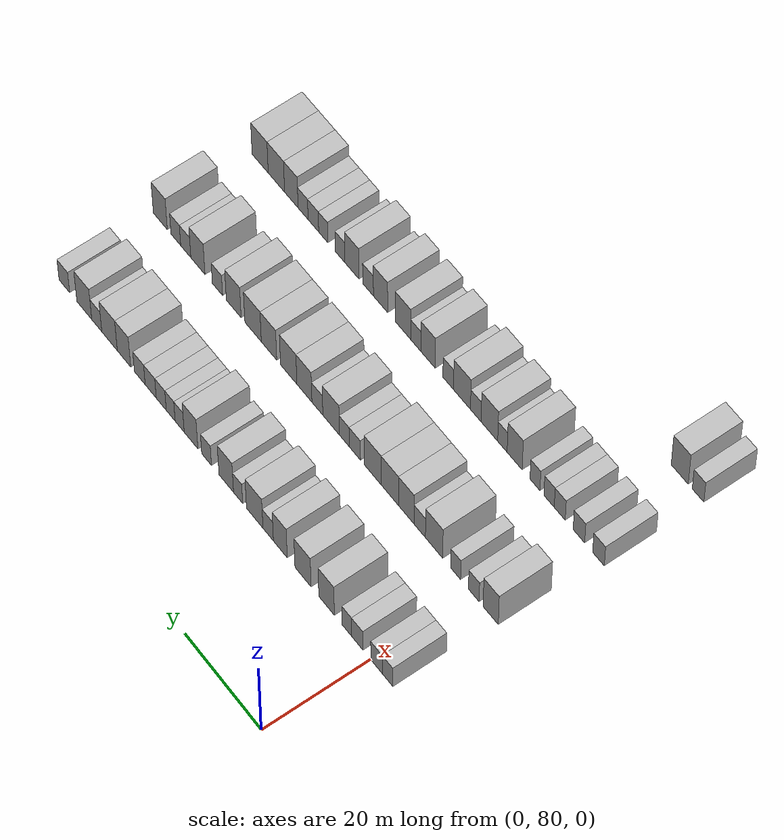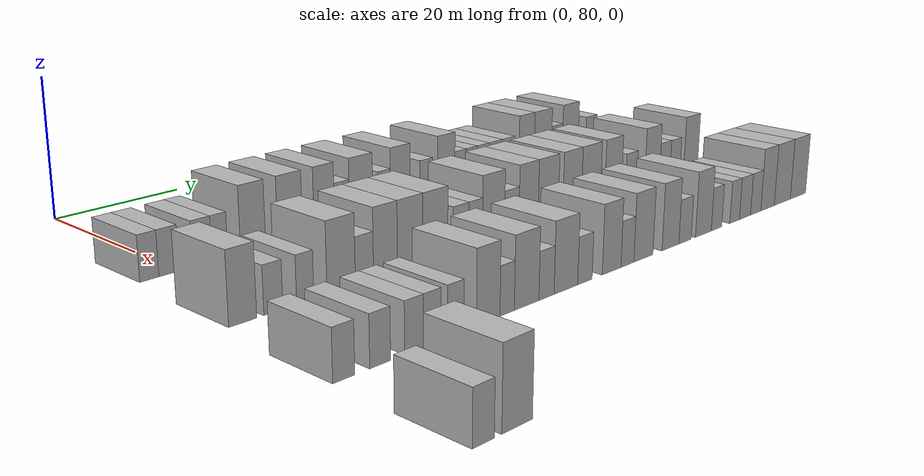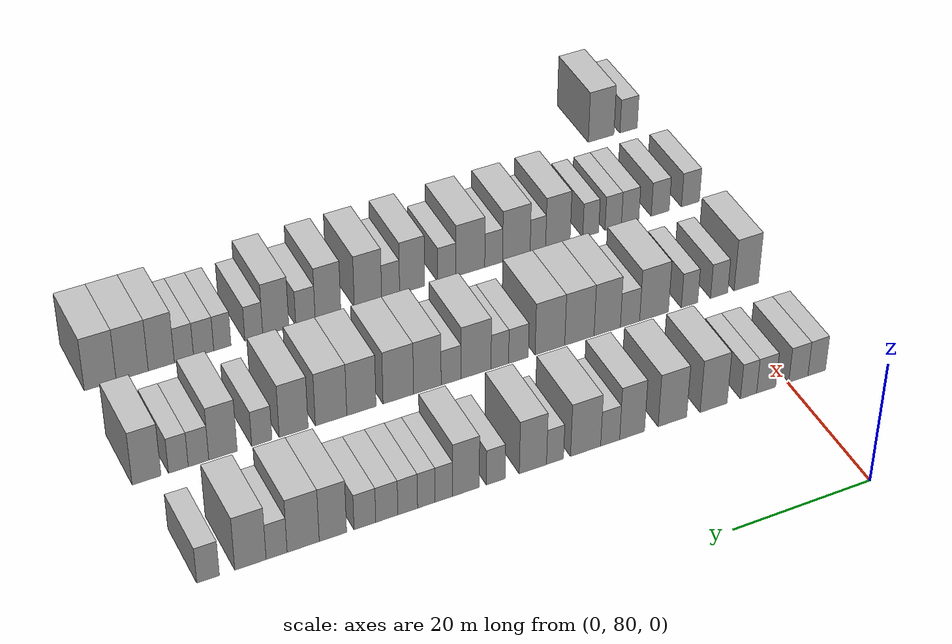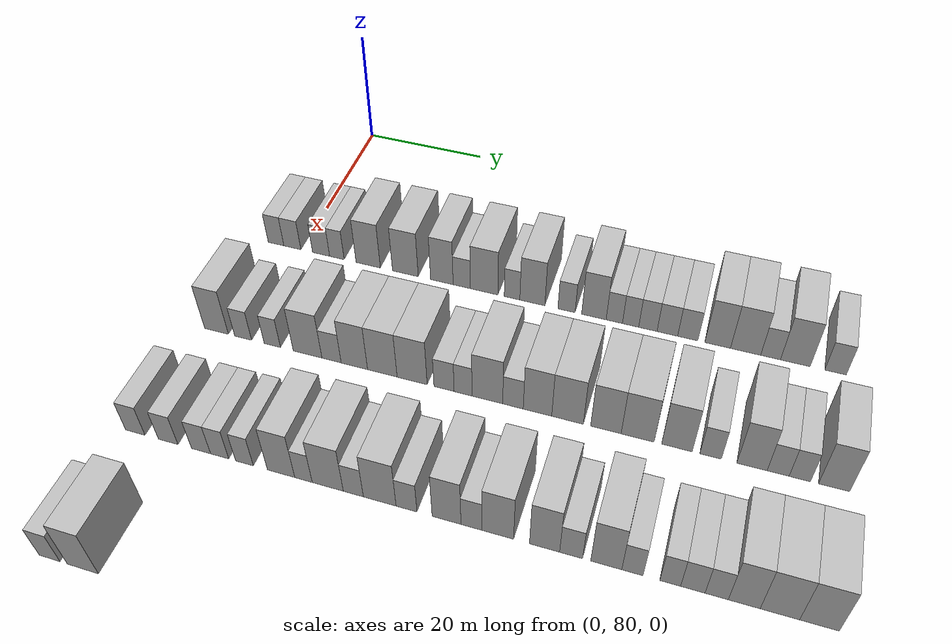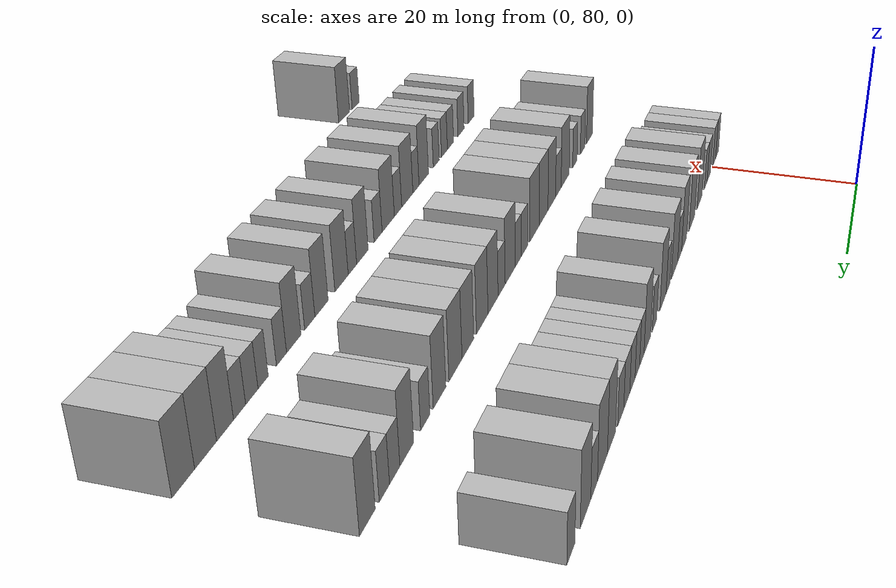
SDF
<sdf version="1.6">
 <world name="default">
  <model name="building_110">
   <static>1</static>
   <pose>25.0000 75.6495 0 0.000000 0.000000 0.000000</pose>
   <link name="link">
    <pose>0 0 3.00 0 0 0</pose>
    <collision name="collision"><geometry><box><size>10.0000 2.6964 6.0000</size></box></geometry></collision>
    <visual name="visual">
     <cast_shadows>0</cast_shadows>
     <geometry><box><size>10.0000 2.6964 6.0000</size></box></geometry>
     <material>
      <script>
       <uri>model://HANNAS_wall/materials/scripts</uri>
       <uri>model://HANNAS_wall/materials/textures</uri>
       <name>vrc/HANNAS_wall</name>
      </script>
     </material>
    </visual>
   </link>
  </model>
  <model name="building_111">
   <static>1</static>
   <pose>25.0000 78.4590 0 0.000000 0.000000 0.000000</pose>
   <link name="link">
    <pose>0 0 3.00 0 0 0</pose>
    <collision name="collision"><geometry><box><size>10.0000 2.9227 6.0000</size></box></geometry></collision>
    <visual name="visual">
     <cast_shadows>0</cast_shadows>
     <geometry><box><size>10.0000 2.9227 6.0000</size></box></geometry>
     <material>
      <script>
       <uri>model://HANNAS_wall/materials/scripts</uri>
       <uri>model://HANNAS_wall/materials/textures</uri>
       <name>vrc/HANNAS_wall</name>
      </script>
     </material>
    </visual>
   </link>
  </model>
  <model name="building_112">
   <static>1</static>
   <pose>25.0000 83.3650 0 0.000000 0.000000 0.000000</pose>
   <link name="link">
    <pose>0 0 3.00 0 0 0</pose>
    <collision name="collision"><geometry><box><size>10.0000 2.8891 6.0000</size></box></geometry></collision>
    <visual name="visual">
     <cast_shadows>0</cast_shadows>
     <geometry><box><size>10.0000 2.8891 6.0000</size></box></geometry>
     <material>
      <script>
       <uri>model://HANNAS_wall/materials/scripts</uri>
       <uri>model://HANNAS_wall/materials/textures</uri>
       <name>vrc/HANNAS_wall</name>
      </script>
     </material>
    </visual>
   </link>
  </model>
  <model name="building_113">
   <static>1</static>
   <pose>25.0000 86.0320 0 0.000000 0.000000 0.000000</pose>
   <link name="link">
    <pose>0 0 3.00 0 0 0</pose>
    <collision name="collision"><geometry><box><size>10.0000 2.4450 6.0000</size></box></geometry></collision>
    <visual name="visual">
     <cast_shadows>0</cast_shadows>
     <geometry><box><size>10.0000 2.4450 6.0000</size></box></geometry>
     <material>
      <script>
       <uri>model://HANNAS_wall/materials/scripts</uri>
       <uri>model://HANNAS_wall/materials/textures</uri>
       <name>vrc/HANNAS_wall</name>
      </script>
     </material>
    </visual>
   </link>
  </model>
  <model name="building_114">
   <static>1</static>
   <pose>25.0000 91.2689 0 0.000000 0.000000 0.000000</pose>
   <link name="link">
    <pose>0 0 4.50 0 0 0</pose>
    <collision name="collision"><geometry><box><size>10.0000 4.0287 9.0000</size></box></geometry></collision>
    <visual name="visual">
     <cast_shadows>0</cast_shadows>
     <geometry><box><size>10.0000 4.0287 9.0000</size></box></geometry>
     <material>
      <script>
       <uri>model://HANNAS_wall/materials/scripts</uri>
       <uri>model://HANNAS_wall/materials/textures</uri>
       <name>vrc/HANNAS_wall</name>
      </script>
     </material>
    </visual>
   </link>
  </model>
  <model name="building_115">
   <static>1</static>
   <pose>25.0000 97.3821 0 0.000000 0.000000 0.000000</pose>
   <link name="link">
    <pose>0 0 4.50 0 0 0</pose>
    <collision name="collision"><geometry><box><size>10.0000 4.1976 9.0000</size></box></geometry></collision>
    <visual name="visual">
     <cast_shadows>0</cast_shadows>
     <geometry><box><size>10.0000 4.1976 9.0000</size></box></geometry>
     <material>
      <script>
       <uri>model://HANNAS_wall/materials/scripts</uri>
       <uri>model://HANNAS_wall/materials/textures</uri>
       <name>vrc/HANNAS_wall</name>
      </script>
     </material>
    </visual>
   </link>
  </model>
  <model name="building_116">
   <static>1</static>
   <pose>25.0000 103.2933 0 0.000000 0.000000 0.000000</pose>
   <link name="link">
    <pose>0 0 4.50 0 0 0</pose>
    <collision name="collision"><geometry><box><size>10.0000 3.6248 9.0000</size></box></geometry></collision>
    <visual name="visual">
     <cast_shadows>0</cast_shadows>
     <geometry><box><size>10.0000 3.6248 9.0000</size></box></geometry>
     <material>
      <script>
       <uri>model://HANNAS_wall/materials/scripts</uri>
       <uri>model://HANNAS_wall/materials/textures</uri>
       <name>vrc/HANNAS_wall</name>
      </script>
     </material>
    </visual>
   </link>
  </model>
  <model name="building_117">
   <static>1</static>
   <pose>25.0000 106.4768 0 0.000000 0.000000 0.000000</pose>
   <link name="link">
    <pose>0 0 3.00 0 0 0</pose>
    <collision name="collision"><geometry><box><size>10.0000 2.7423 6.0000</size></box></geometry></collision>
    <visual name="visual">
     <cast_shadows>0</cast_shadows>
     <geometry><box><size>10.0000 2.7423 6.0000</size></box></geometry>
     <material>
      <script>
       <uri>model://HANNAS_wall/materials/scripts</uri>
       <uri>model://HANNAS_wall/materials/textures</uri>
       <name>vrc/HANNAS_wall</name>
      </script>
     </material>
    </visual>
   </link>
  </model>
  <model name="building_118">
   <static>1</static>
   <pose>25.0000 110.0171 0 0.000000 0.000000 0.000000</pose>
   <link name="link">
    <pose>0 0 4.50 0 0 0</pose>
    <collision name="collision"><geometry><box><size>10.0000 4.3384 9.0000</size></box></geometry></collision>
    <visual name="visual">
     <cast_shadows>0</cast_shadows>
     <geometry><box><size>10.0000 4.3384 9.0000</size></box></geometry>
     <material>
      <script>
       <uri>model://HANNAS_wall/materials/scripts</uri>
       <uri>model://HANNAS_wall/materials/textures</uri>
       <name>vrc/HANNAS_wall</name>
      </script>
     </material>
    </visual>
   </link>
  </model>
  <model name="building_119">
   <static>1</static>
   <pose>25.0000 114.3981 0 0.000000 0.000000 0.000000</pose>
   <link name="link">
    <pose>0 0 3.00 0 0 0</pose>
    <collision name="collision"><geometry><box><size>10.0000 2.4237 6.0000</size></box></geometry></collision>
    <visual name="visual">
     <cast_shadows>0</cast_shadows>
     <geometry><box><size>10.0000 2.4237 6.0000</size></box></geometry>
     <material>
      <script>
       <uri>model://HANNAS_wall/materials/scripts</uri>
       <uri>model://HANNAS_wall/materials/textures</uri>
       <name>vrc/HANNAS_wall</name>
      </script>
     </material>
    </visual>
   </link>
  </model>
  <model name="building_120">
   <static>1</static>
   <pose>25.0000 117.5397 0 0.000000 0.000000 0.000000</pose>
   <link name="link">
    <pose>0 0 4.50 0 0 0</pose>
    <collision name="collision"><geometry><box><size>10.0000 3.8594 9.0000</size></box></geometry></collision>
    <visual name="visual">
     <cast_shadows>0</cast_shadows>
     <geometry><box><size>10.0000 3.8594 9.0000</size></box></geometry>
     <material>
      <script>
       <uri>model://HANNAS_wall/materials/scripts</uri>
       <uri>model://HANNAS_wall/materials/textures</uri>
       <name>vrc/HANNAS_wall</name>
      </script>
     </material>
    </visual>
   </link>
  </model>
  <model name="building_121">
   <static>1</static>
   <pose>25.0000 122.7769 0 0.000000 0.000000 0.000000</pose>
   <link name="link">
    <pose>0 0 3.00 0 0 0</pose>
    <collision name="collision"><geometry><box><size>10.0000 2.6151 6.0000</size></box></geometry></collision>
    <visual name="visual">
     <cast_shadows>0</cast_shadows>
     <geometry><box><size>10.0000 2.6151 6.0000</size></box></geometry>
     <material>
      <script>
       <uri>model://HANNAS_wall/materials/scripts</uri>
       <uri>model://HANNAS_wall/materials/textures</uri>
       <name>vrc/HANNAS_wall</name>
      </script>
     </material>
    </visual>
   </link>
  </model>
  <model name="building_122">
   <static>1</static>
   <pose>25.0000 126.9235 0 0.000000 0.000000 0.000000</pose>
   <link name="link">
    <pose>0 0 4.50 0 0 0</pose>
    <collision name="collision"><geometry><box><size>10.0000 3.6781 9.0000</size></box></geometry></collision>
    <visual name="visual">
     <cast_shadows>0</cast_shadows>
     <geometry><box><size>10.0000 3.6781 9.0000</size></box></geometry>
     <material>
      <script>
       <uri>model://HANNAS_wall/materials/scripts</uri>
       <uri>model://HANNAS_wall/materials/textures</uri>
       <name>vrc/HANNAS_wall</name>
      </script>
     </material>
    </visual>
   </link>
  </model>
  <model name="building_123">
   <static>1</static>
   <pose>25.0000 129.9770 0 0.000000 0.000000 0.000000</pose>
   <link name="link">
    <pose>0 0 3.00 0 0 0</pose>
    <collision name="collision"><geometry><box><size>10.0000 2.4290 6.0000</size></box></geometry></collision>
    <visual name="visual">
     <cast_shadows>0</cast_shadows>
     <geometry><box><size>10.0000 2.4290 6.0000</size></box></geometry>
     <material>
      <script>
       <uri>model://HANNAS_wall/materials/scripts</uri>
       <uri>model://HANNAS_wall/materials/textures</uri>
       <name>vrc/HANNAS_wall</name>
      </script>
     </material>
    </visual>
   </link>
  </model>
  <model name="building_124">
   <static>1</static>
   <pose>25.0000 132.3944 0 0.000000 0.000000 0.000000</pose>
   <link name="link">
    <pose>0 0 3.00 0 0 0</pose>
    <collision name="collision"><geometry><box><size>10.0000 2.4057 6.0000</size></box></geometry></collision>
    <visual name="visual">
     <cast_shadows>0</cast_shadows>
     <geometry><box><size>10.0000 2.4057 6.0000</size></box></geometry>
     <material>
      <script>
       <uri>model://HANNAS_wall/materials/scripts</uri>
       <uri>model://HANNAS_wall/materials/textures</uri>
       <name>vrc/HANNAS_wall</name>
      </script>
     </material>
    </visual>
   </link>
  </model>
  <model name="building_125">
   <static>1</static>
   <pose>25.0000 134.9478 0 0.000000 0.000000 0.000000</pose>
   <link name="link">
    <pose>0 0 3.00 0 0 0</pose>
    <collision name="collision"><geometry><box><size>10.0000 2.7012 6.0000</size></box></geometry></collision>
    <visual name="visual">
     <cast_shadows>0</cast_shadows>
     <geometry><box><size>10.0000 2.7012 6.0000</size></box></geometry>
     <material>
      <script>
       <uri>model://HANNAS_wall/materials/scripts</uri>
       <uri>model://HANNAS_wall/materials/textures</uri>
       <name>vrc/HANNAS_wall</name>
      </script>
     </material>
    </visual>
   </link>
  </model>
  <model name="building_126">
   <static>1</static>
   <pose>25.0000 137.7971 0 0.000000 0.000000 0.000000</pose>
   <link name="link">
    <pose>0 0 3.00 0 0 0</pose>
    <collision name="collision"><geometry><box><size>10.0000 2.9974 6.0000</size></box></geometry></collision>
    <visual name="visual">
     <cast_shadows>0</cast_shadows>
     <geometry><box><size>10.0000 2.9974 6.0000</size></box></geometry>
     <material>
      <script>
       <uri>model://HANNAS_wall/materials/scripts</uri>
       <uri>model://HANNAS_wall/materials/textures</uri>
       <name>vrc/HANNAS_wall</name>
      </script>
     </material>
    </visual>
   </link>
  </model>
  <model name="building_127">
   <static>1</static>
   <pose>25.0000 140.7614 0 0.000000 0.000000 0.000000</pose>
   <link name="link">
    <pose>0 0 3.00 0 0 0</pose>
    <collision name="collision"><geometry><box><size>10.0000 2.9312 6.0000</size></box></geometry></collision>
    <visual name="visual">
     <cast_shadows>0</cast_shadows>
     <geometry><box><size>10.0000 2.9312 6.0000</size></box></geometry>
     <material>
      <script>
       <uri>model://HANNAS_wall/materials/scripts</uri>
       <uri>model://HANNAS_wall/materials/textures</uri>
       <name>vrc/HANNAS_wall</name>
      </script>
     </material>
    </visual>
   </link>
  </model>
  <model name="building_128">
   <static>1</static>
   <pose>25.0000 145.0583 0 0.000000 0.000000 0.000000</pose>
   <link name="link">
    <pose>0 0 4.50 0 0 0</pose>
    <collision name="collision"><geometry><box><size>10.0000 3.6625 9.0000</size></box></geometry></collision>
    <visual name="visual">
     <cast_shadows>0</cast_shadows>
     <geometry><box><size>10.0000 3.6625 9.0000</size></box></geometry>
     <material>
      <script>
       <uri>model://HANNAS_wall/materials/scripts</uri>
       <uri>model://HANNAS_wall/materials/textures</uri>
       <name>vrc/HANNAS_wall</name>
      </script>
     </material>
    </visual>
   </link>
  </model>
  <model name="building_129">
   <static>1</static>
   <pose>25.0000 149.0203 0 0.000000 0.000000 0.000000</pose>
   <link name="link">
    <pose>0 0 4.50 0 0 0</pose>
    <collision name="collision"><geometry><box><size>10.0000 4.2614 9.0000</size></box></geometry></collision>
    <visual name="visual">
     <cast_shadows>0</cast_shadows>
     <geometry><box><size>10.0000 4.2614 9.0000</size></box></geometry>
     <material>
      <script>
       <uri>model://HANNAS_wall/materials/scripts</uri>
       <uri>model://HANNAS_wall/materials/textures</uri>
       <name>vrc/HANNAS_wall</name>
      </script>
     </material>
    </visual>
   </link>
  </model>
  <model name="building_130">
   <static>1</static>
   <pose>25.0000 152.5335 0 0.000000 0.000000 0.000000</pose>
   <link name="link">
    <pose>0 0 3.00 0 0 0</pose>
    <collision name="collision"><geometry><box><size>10.0000 2.7650 6.0000</size></box></geometry></collision>
    <visual name="visual">
     <cast_shadows>0</cast_shadows>
     <geometry><box><size>10.0000 2.7650 6.0000</size></box></geometry>
     <material>
      <script>
       <uri>model://HANNAS_wall/materials/scripts</uri>
       <uri>model://HANNAS_wall/materials/textures</uri>
       <name>vrc/HANNAS_wall</name>
      </script>
     </material>
    </visual>
   </link>
  </model>
  <model name="building_131">
   <static>1</static>
   <pose>25.0000 155.9703 0 0.000000 0.000000 0.000000</pose>
   <link name="link">
    <pose>0 0 4.50 0 0 0</pose>
    <collision name="collision"><geometry><box><size>10.0000 4.1086 9.0000</size></box></geometry></collision>
    <visual name="visual">
     <cast_shadows>0</cast_shadows>
     <geometry><box><size>10.0000 4.1086 9.0000</size></box></geometry>
     <material>
      <script>
       <uri>model://HANNAS_wall/materials/scripts</uri>
       <uri>model://HANNAS_wall/materials/textures</uri>
       <name>vrc/HANNAS_wall</name>
      </script>
     </material>
    </visual>
   </link>
  </model>
  <model name="building_132">
   <static>1</static>
   <pose>25.0000 161.4896 0 0.000000 0.000000 0.000000</pose>
   <link name="link">
    <pose>0 0 3.00 0 0 0</pose>
    <collision name="collision"><geometry><box><size>10.0000 2.9298 6.0000</size></box></geometry></collision>
    <visual name="visual">
     <cast_shadows>0</cast_shadows>
     <geometry><box><size>10.0000 2.9298 6.0000</size></box></geometry>
     <material>
      <script>
       <uri>model://HANNAS_wall/materials/scripts</uri>
       <uri>model://HANNAS_wall/materials/textures</uri>
       <name>vrc/HANNAS_wall</name>
      </script>
     </material>
    </visual>
   </link>
  </model>
  <model name="building_278">
   <static>1</static>
   <pose>44.0000 75.2810 0 0.000000 0.000000 0.000000</pose>
   <link name="link">
    <pose>0 0 4.50 0 0 0</pose>
    <collision name="collision"><geometry><box><size>10.0000 3.8333 9.0000</size></box></geometry></collision>
    <visual name="visual">
     <cast_shadows>0</cast_shadows>
     <geometry><box><size>10.0000 3.8333 9.0000</size></box></geometry>
     <material>
      <script>
       <uri>model://HANNAS_wall/materials/scripts</uri>
       <uri>model://HANNAS_wall/materials/textures</uri>
       <name>vrc/HANNAS_wall</name>
      </script>
     </material>
    </visual>
   </link>
  </model>
  <model name="building_279">
   <static>1</static>
   <pose>44.0000 79.5506 0 0.000000 0.000000 0.000000</pose>
   <link name="link">
    <pose>0 0 3.00 0 0 0</pose>
    <collision name="collision"><geometry><box><size>10.0000 2.7057 6.0000</size></box></geometry></collision>
    <visual name="visual">
     <cast_shadows>0</cast_shadows>
     <geometry><box><size>10.0000 2.7057 6.0000</size></box></geometry>
     <material>
      <script>
       <uri>model://HANNAS_wall/materials/scripts</uri>
       <uri>model://HANNAS_wall/materials/textures</uri>
       <name>vrc/HANNAS_wall</name>
      </script>
     </material>
    </visual>
   </link>
  </model>
  <model name="building_280">
   <static>1</static>
   <pose>44.0000 84.1802 0 0.000000 0.000000 0.000000</pose>
   <link name="link">
    <pose>0 0 3.00 0 0 0</pose>
    <collision name="collision"><geometry><box><size>10.0000 2.5535 6.0000</size></box></geometry></collision>
    <visual name="visual">
     <cast_shadows>0</cast_shadows>
     <geometry><box><size>10.0000 2.5535 6.0000</size></box></geometry>
     <material>
      <script>
       <uri>model://HANNAS_wall/materials/scripts</uri>
       <uri>model://HANNAS_wall/materials/textures</uri>
       <name>vrc/HANNAS_wall</name>
      </script>
     </material>
    </visual>
   </link>
  </model>
  <model name="building_281">
   <static>1</static>
   <pose>44.0000 89.6745 0 0.000000 0.000000 0.000000</pose>
   <link name="link">
    <pose>0 0 4.50 0 0 0</pose>
    <collision name="collision"><geometry><box><size>10.0000 4.4352 9.0000</size></box></geometry></collision>
    <visual name="visual">
     <cast_shadows>0</cast_shadows>
     <geometry><box><size>10.0000 4.4352 9.0000</size></box></geometry>
     <material>
      <script>
       <uri>model://HANNAS_wall/materials/scripts</uri>
       <uri>model://HANNAS_wall/materials/textures</uri>
       <name>vrc/HANNAS_wall</name>
      </script>
     </material>
    </visual>
   </link>
  </model>
  <model name="building_282">
   <static>1</static>
   <pose>44.0000 93.3653 0 0.000000 0.000000 0.000000</pose>
   <link name="link">
    <pose>0 0 3.00 0 0 0</pose>
    <collision name="collision"><geometry><box><size>10.0000 2.9464 6.0000</size></box></geometry></collision>
    <visual name="visual">
     <cast_shadows>0</cast_shadows>
     <geometry><box><size>10.0000 2.9464 6.0000</size></box></geometry>
     <material>
      <script>
       <uri>model://HANNAS_wall/materials/scripts</uri>
       <uri>model://HANNAS_wall/materials/textures</uri>
       <name>vrc/HANNAS_wall</name>
      </script>
     </material>
    </visual>
   </link>
  </model>
  <model name="building_283">
   <static>1</static>
   <pose>44.0000 96.8377 0 0.000000 0.000000 0.000000</pose>
   <link name="link">
    <pose>0 0 4.50 0 0 0</pose>
    <collision name="collision"><geometry><box><size>10.0000 3.9984 9.0000</size></box></geometry></collision>
    <visual name="visual">
     <cast_shadows>0</cast_shadows>
     <geometry><box><size>10.0000 3.9984 9.0000</size></box></geometry>
     <material>
      <script>
       <uri>model://HANNAS_wall/materials/scripts</uri>
       <uri>model://HANNAS_wall/materials/textures</uri>
       <name>vrc/HANNAS_wall</name>
      </script>
     </material>
    </visual>
   </link>
  </model>
  <model name="building_284">
   <static>1</static>
   <pose>44.0000 101.0473 0 0.000000 0.000000 0.000000</pose>
   <link name="link">
    <pose>0 0 4.50 0 0 0</pose>
    <collision name="collision"><geometry><box><size>10.0000 4.4208 9.0000</size></box></geometry></collision>
    <visual name="visual">
     <cast_shadows>0</cast_shadows>
     <geometry><box><size>10.0000 4.4208 9.0000</size></box></geometry>
     <material>
      <script>
       <uri>model://HANNAS_wall/materials/scripts</uri>
       <uri>model://HANNAS_wall/materials/textures</uri>
       <name>vrc/HANNAS_wall</name>
      </script>
     </material>
    </visual>
   </link>
  </model>
  <model name="building_285">
   <static>1</static>
   <pose>44.0000 105.4753 0 0.000000 0.000000 0.000000</pose>
   <link name="link">
    <pose>0 0 4.50 0 0 0</pose>
    <collision name="collision"><geometry><box><size>10.0000 4.4351 9.0000</size></box></geometry></collision>
    <visual name="visual">
     <cast_shadows>0</cast_shadows>
     <geometry><box><size>10.0000 4.4351 9.0000</size></box></geometry>
     <material>
      <script>
       <uri>model://HANNAS_wall/materials/scripts</uri>
       <uri>model://HANNAS_wall/materials/textures</uri>
       <name>vrc/HANNAS_wall</name>
      </script>
     </material>
    </visual>
   </link>
  </model>
  <model name="building_286">
   <static>1</static>
   <pose>44.0000 110.1576 0 0.000000 0.000000 0.000000</pose>
   <link name="link">
    <pose>0 0 3.00 0 0 0</pose>
    <collision name="collision"><geometry><box><size>10.0000 2.9295 6.0000</size></box></geometry></collision>
    <visual name="visual">
     <cast_shadows>0</cast_shadows>
     <geometry><box><size>10.0000 2.9295 6.0000</size></box></geometry>
     <material>
      <script>
       <uri>model://HANNAS_wall/materials/scripts</uri>
       <uri>model://HANNAS_wall/materials/textures</uri>
       <name>vrc/HANNAS_wall</name>
      </script>
     </material>
    </visual>
   </link>
  </model>
  <model name="building_287">
   <static>1</static>
   <pose>44.0000 112.9179 0 0.000000 0.000000 0.000000</pose>
   <link name="link">
    <pose>0 0 3.00 0 0 0</pose>
    <collision name="collision"><geometry><box><size>10.0000 2.5911 6.0000</size></box></geometry></collision>
    <visual name="visual">
     <cast_shadows>0</cast_shadows>
     <geometry><box><size>10.0000 2.5911 6.0000</size></box></geometry>
     <material>
      <script>
       <uri>model://HANNAS_wall/materials/scripts</uri>
       <uri>model://HANNAS_wall/materials/textures</uri>
       <name>vrc/HANNAS_wall</name>
      </script>
     </material>
    </visual>
   </link>
  </model>
  <model name="building_288">
   <static>1</static>
   <pose>44.0000 116.4005 0 0.000000 0.000000 0.000000</pose>
   <link name="link">
    <pose>0 0 4.50 0 0 0</pose>
    <collision name="collision"><geometry><box><size>10.0000 4.3740 9.0000</size></box></geometry></collision>
    <visual name="visual">
     <cast_shadows>0</cast_shadows>
     <geometry><box><size>10.0000 4.3740 9.0000</size></box></geometry>
     <material>
      <script>
       <uri>model://HANNAS_wall/materials/scripts</uri>
       <uri>model://HANNAS_wall/materials/textures</uri>
       <name>vrc/HANNAS_wall</name>
      </script>
     </material>
    </visual>
   </link>
  </model>
  <model name="building_289">
   <static>1</static>
   <pose>44.0000 120.0363 0 0.000000 0.000000 0.000000</pose>
   <link name="link">
    <pose>0 0 3.00 0 0 0</pose>
    <collision name="collision"><geometry><box><size>10.0000 2.8978 6.0000</size></box></geometry></collision>
    <visual name="visual">
     <cast_shadows>0</cast_shadows>
     <geometry><box><size>10.0000 2.8978 6.0000</size></box></geometry>
     <material>
      <script>
       <uri>model://HANNAS_wall/materials/scripts</uri>
       <uri>model://HANNAS_wall/materials/textures</uri>
       <name>vrc/HANNAS_wall</name>
      </script>
     </material>
    </visual>
   </link>
  </model>
  <model name="building_290">
   <static>1</static>
   <pose>44.0000 123.4776 0 0.000000 0.000000 0.000000</pose>
   <link name="link">
    <pose>0 0 4.50 0 0 0</pose>
    <collision name="collision"><geometry><box><size>10.0000 3.9847 9.0000</size></box></geometry></collision>
    <visual name="visual">
     <cast_shadows>0</cast_shadows>
     <geometry><box><size>10.0000 3.9847 9.0000</size></box></geometry>
     <material>
      <script>
       <uri>model://HANNAS_wall/materials/scripts</uri>
       <uri>model://HANNAS_wall/materials/textures</uri>
       <name>vrc/HANNAS_wall</name>
      </script>
     </material>
    </visual>
   </link>
  </model>
  <model name="building_291">
   <static>1</static>
   <pose>44.0000 127.6505 0 0.000000 0.000000 0.000000</pose>
   <link name="link">
    <pose>0 0 4.50 0 0 0</pose>
    <collision name="collision"><geometry><box><size>10.0000 4.3612 9.0000</size></box></geometry></collision>
    <visual name="visual">
     <cast_shadows>0</cast_shadows>
     <geometry><box><size>10.0000 4.3612 9.0000</size></box></geometry>
     <material>
      <script>
       <uri>model://HANNAS_wall/materials/scripts</uri>
       <uri>model://HANNAS_wall/materials/textures</uri>
       <name>vrc/HANNAS_wall</name>
      </script>
     </material>
    </visual>
   </link>
  </model>
  <model name="building_292">
   <static>1</static>
   <pose>44.0000 132.9008 0 0.000000 0.000000 0.000000</pose>
   <link name="link">
    <pose>0 0 4.50 0 0 0</pose>
    <collision name="collision"><geometry><box><size>10.0000 4.1393 9.0000</size></box></geometry></collision>
    <visual name="visual">
     <cast_shadows>0</cast_shadows>
     <geometry><box><size>10.0000 4.1393 9.0000</size></box></geometry>
     <material>
      <script>
       <uri>model://HANNAS_wall/materials/scripts</uri>
       <uri>model://HANNAS_wall/materials/textures</uri>
       <name>vrc/HANNAS_wall</name>
      </script>
     </material>
    </visual>
   </link>
  </model>
  <model name="building_293">
   <static>1</static>
   <pose>44.0000 137.1803 0 0.000000 0.000000 0.000000</pose>
   <link name="link">
    <pose>0 0 4.50 0 0 0</pose>
    <collision name="collision"><geometry><box><size>10.0000 4.4198 9.0000</size></box></geometry></collision>
    <visual name="visual">
     <cast_shadows>0</cast_shadows>
     <geometry><box><size>10.0000 4.4198 9.0000</size></box></geometry>
     <material>
      <script>
       <uri>model://HANNAS_wall/materials/scripts</uri>
       <uri>model://HANNAS_wall/materials/textures</uri>
       <name>vrc/HANNAS_wall</name>
      </script>
     </material>
    </visual>
   </link>
  </model>
  <model name="building_294">
   <static>1</static>
   <pose>44.0000 142.4025 0 0.000000 0.000000 0.000000</pose>
   <link name="link">
    <pose>0 0 4.50 0 0 0</pose>
    <collision name="collision"><geometry><box><size>10.0000 4.0246 9.0000</size></box></geometry></collision>
    <visual name="visual">
     <cast_shadows>0</cast_shadows>
     <geometry><box><size>10.0000 4.0246 9.0000</size></box></geometry>
     <material>
      <script>
       <uri>model://HANNAS_wall/materials/scripts</uri>
       <uri>model://HANNAS_wall/materials/textures</uri>
       <name>vrc/HANNAS_wall</name>
      </script>
     </material>
    </visual>
   </link>
  </model>
  <model name="building_295">
   <static>1</static>
   <pose>44.0000 146.8113 0 0.000000 0.000000 0.000000</pose>
   <link name="link">
    <pose>0 0 3.00 0 0 0</pose>
    <collision name="collision"><geometry><box><size>10.0000 2.7929 6.0000</size></box></geometry></collision>
    <visual name="visual">
     <cast_shadows>0</cast_shadows>
     <geometry><box><size>10.0000 2.7929 6.0000</size></box></geometry>
     <material>
      <script>
       <uri>model://HANNAS_wall/materials/scripts</uri>
       <uri>model://HANNAS_wall/materials/textures</uri>
       <name>vrc/HANNAS_wall</name>
      </script>
     </material>
    </visual>
   </link>
  </model>
  <model name="building_296">
   <static>1</static>
   <pose>44.0000 152.1411 0 0.000000 0.000000 0.000000</pose>
   <link name="link">
    <pose>0 0 4.50 0 0 0</pose>
    <collision name="collision"><geometry><box><size>10.0000 3.8667 9.0000</size></box></geometry></collision>
    <visual name="visual">
     <cast_shadows>0</cast_shadows>
     <geometry><box><size>10.0000 3.8667 9.0000</size></box></geometry>
     <material>
      <script>
       <uri>model://HANNAS_wall/materials/scripts</uri>
       <uri>model://HANNAS_wall/materials/textures</uri>
       <name>vrc/HANNAS_wall</name>
      </script>
     </material>
    </visual>
   </link>
  </model>
  <model name="building_297">
   <static>1</static>
   <pose>44.0000 155.4641 0 0.000000 0.000000 0.000000</pose>
   <link name="link">
    <pose>0 0 3.00 0 0 0</pose>
    <collision name="collision"><geometry><box><size>10.0000 2.7793 6.0000</size></box></geometry></collision>
    <visual name="visual">
     <cast_shadows>0</cast_shadows>
     <geometry><box><size>10.0000 2.7793 6.0000</size></box></geometry>
     <material>
      <script>
       <uri>model://HANNAS_wall/materials/scripts</uri>
       <uri>model://HANNAS_wall/materials/textures</uri>
       <name>vrc/HANNAS_wall</name>
      </script>
     </material>
    </visual>
   </link>
  </model>
  <model name="building_298">
   <static>1</static>
   <pose>44.0000 158.1917 0 0.000000 0.000000 0.000000</pose>
   <link name="link">
    <pose>0 0 3.00 0 0 0</pose>
    <collision name="collision"><geometry><box><size>10.0000 2.6759 6.0000</size></box></geometry></collision>
    <visual name="visual">
     <cast_shadows>0</cast_shadows>
     <geometry><box><size>10.0000 2.6759 6.0000</size></box></geometry>
     <material>
      <script>
       <uri>model://HANNAS_wall/materials/scripts</uri>
       <uri>model://HANNAS_wall/materials/textures</uri>
       <name>vrc/HANNAS_wall</name>
      </script>
     </material>
    </visual>
   </link>
  </model>
  <model name="building_299">
   <static>1</static>
   <pose>44.0000 162.4577 0 0.000000 0.000000 0.000000</pose>
   <link name="link">
    <pose>0 0 4.50 0 0 0</pose>
    <collision name="collision"><geometry><box><size>10.0000 3.8561 9.0000</size></box></geometry></collision>
    <visual name="visual">
     <cast_shadows>0</cast_shadows>
     <geometry><box><size>10.0000 3.8561 9.0000</size></box></geometry>
     <material>
      <script>
       <uri>model://HANNAS_wall/materials/scripts</uri>
       <uri>model://HANNAS_wall/materials/textures</uri>
       <name>vrc/HANNAS_wall</name>
      </script>
     </material>
    </visual>
   </link>
  </model>
  <model name="building_456">
   <static>1</static>
   <pose>63.0000 73.3657 0 0.000000 0.000000 0.000000</pose>
   <link name="link">
    <pose>0 0 3.00 0 0 0</pose>
    <collision name="collision"><geometry><box><size>10.0000 2.9183 6.0000</size></box></geometry></collision>
    <visual name="visual">
     <cast_shadows>0</cast_shadows>
     <geometry><box><size>10.0000 2.9183 6.0000</size></box></geometry>
     <material>
      <script>
       <uri>model://HANNAS_wall/materials/scripts</uri>
       <uri>model://HANNAS_wall/materials/textures</uri>
       <name>vrc/HANNAS_wall</name>
      </script>
     </material>
    </visual>
   </link>
  </model>
  <model name="building_457">
   <static>1</static>
   <pose>63.0000 78.2753 0 0.000000 0.000000 0.000000</pose>
   <link name="link">
    <pose>0 0 3.00 0 0 0</pose>
    <collision name="collision"><geometry><box><size>10.0000 2.9010 6.0000</size></box></geometry></collision>
    <visual name="visual">
     <cast_shadows>0</cast_shadows>
     <geometry><box><size>10.0000 2.9010 6.0000</size></box></geometry>
     <material>
      <script>
       <uri>model://HANNAS_wall/materials/scripts</uri>
       <uri>model://HANNAS_wall/materials/textures</uri>
       <name>vrc/HANNAS_wall</name>
      </script>
     </material>
    </visual>
   </link>
  </model>
  <model name="building_458">
   <static>1</static>
   <pose>63.0000 83.1173 0 0.000000 0.000000 0.000000</pose>
   <link name="link">
    <pose>0 0 3.00 0 0 0</pose>
    <collision name="collision"><geometry><box><size>10.0000 2.7830 6.0000</size></box></geometry></collision>
    <visual name="visual">
     <cast_shadows>0</cast_shadows>
     <geometry><box><size>10.0000 2.7830 6.0000</size></box></geometry>
     <material>
      <script>
       <uri>model://HANNAS_wall/materials/scripts</uri>
       <uri>model://HANNAS_wall/materials/textures</uri>
       <name>vrc/HANNAS_wall</name>
      </script>
     </material>
    </visual>
   </link>
  </model>
  <model name="building_459">
   <static>1</static>
   <pose>63.0000 85.8189 0 0.000000 0.000000 0.000000</pose>
   <link name="link">
    <pose>0 0 3.00 0 0 0</pose>
    <collision name="collision"><geometry><box><size>10.0000 2.6202 6.0000</size></box></geometry></collision>
    <visual name="visual">
     <cast_shadows>0</cast_shadows>
     <geometry><box><size>10.0000 2.6202 6.0000</size></box></geometry>
     <material>
      <script>
       <uri>model://HANNAS_wall/materials/scripts</uri>
       <uri>model://HANNAS_wall/materials/textures</uri>
       <name>vrc/HANNAS_wall</name>
      </script>
     </material>
    </visual>
   </link>
  </model>
  <model name="building_460">
   <static>1</static>
   <pose>63.0000 89.3939 0 0.000000 0.000000 0.000000</pose>
   <link name="link">
    <pose>0 0 3.00 0 0 0</pose>
    <collision name="collision"><geometry><box><size>10.0000 2.5298 6.0000</size></box></geometry></collision>
    <visual name="visual">
     <cast_shadows>0</cast_shadows>
     <geometry><box><size>10.0000 2.5298 6.0000</size></box></geometry>
     <material>
      <script>
       <uri>model://HANNAS_wall/materials/scripts</uri>
       <uri>model://HANNAS_wall/materials/textures</uri>
       <name>vrc/HANNAS_wall</name>
      </script>
     </material>
    </visual>
   </link>
  </model>
  <model name="building_461">
   <static>1</static>
   <pose>63.0000 94.5844 0 0.000000 0.000000 0.000000</pose>
   <link name="link">
    <pose>0 0 4.50 0 0 0</pose>
    <collision name="collision"><geometry><box><size>10.0000 3.8511 9.0000</size></box></geometry></collision>
    <visual name="visual">
     <cast_shadows>0</cast_shadows>
     <geometry><box><size>10.0000 3.8511 9.0000</size></box></geometry>
     <material>
      <script>
       <uri>model://HANNAS_wall/materials/scripts</uri>
       <uri>model://HANNAS_wall/materials/textures</uri>
       <name>vrc/HANNAS_wall</name>
      </script>
     </material>
    </visual>
   </link>
  </model>
  <model name="building_462">
   <static>1</static>
   <pose>63.0000 97.7195 0 0.000000 0.000000 0.000000</pose>
   <link name="link">
    <pose>0 0 3.00 0 0 0</pose>
    <collision name="collision"><geometry><box><size>10.0000 2.4191 6.0000</size></box></geometry></collision>
    <visual name="visual">
     <cast_shadows>0</cast_shadows>
     <geometry><box><size>10.0000 2.4191 6.0000</size></box></geometry>
     <material>
      <script>
       <uri>model://HANNAS_wall/materials/scripts</uri>
       <uri>model://HANNAS_wall/materials/textures</uri>
       <name>vrc/HANNAS_wall</name>
      </script>
     </material>
    </visual>
   </link>
  </model>
  <model name="building_463">
   <static>1</static>
   <pose>63.0000 101.0705 0 0.000000 0.000000 0.000000</pose>
   <link name="link">
    <pose>0 0 4.50 0 0 0</pose>
    <collision name="collision"><geometry><box><size>10.0000 4.2828 9.0000</size></box></geometry></collision>
    <visual name="visual">
     <cast_shadows>0</cast_shadows>
     <geometry><box><size>10.0000 4.2828 9.0000</size></box></geometry>
     <material>
      <script>
       <uri>model://HANNAS_wall/materials/scripts</uri>
       <uri>model://HANNAS_wall/materials/textures</uri>
       <name>vrc/HANNAS_wall</name>
      </script>
     </material>
    </visual>
   </link>
  </model>
  <model name="building_464">
   <static>1</static>
   <pose>63.0000 104.5792 0 0.000000 0.000000 0.000000</pose>
   <link name="link">
    <pose>0 0 3.00 0 0 0</pose>
    <collision name="collision"><geometry><box><size>10.0000 2.7346 6.0000</size></box></geometry></collision>
    <visual name="visual">
     <cast_shadows>0</cast_shadows>
     <geometry><box><size>10.0000 2.7346 6.0000</size></box></geometry>
     <material>
      <script>
       <uri>model://HANNAS_wall/materials/scripts</uri>
       <uri>model://HANNAS_wall/materials/textures</uri>
       <name>vrc/HANNAS_wall</name>
      </script>
     </material>
    </visual>
   </link>
  </model>
  <model name="building_465">
   <static>1</static>
   <pose>63.0000 108.1446 0 0.000000 0.000000 0.000000</pose>
   <link name="link">
    <pose>0 0 4.50 0 0 0</pose>
    <collision name="collision"><geometry><box><size>10.0000 4.3963 9.0000</size></box></geometry></collision>
    <visual name="visual">
     <cast_shadows>0</cast_shadows>
     <geometry><box><size>10.0000 4.3963 9.0000</size></box></geometry>
     <material>
      <script>
       <uri>model://HANNAS_wall/materials/scripts</uri>
       <uri>model://HANNAS_wall/materials/textures</uri>
       <name>vrc/HANNAS_wall</name>
      </script>
     </material>
    </visual>
   </link>
  </model>
  <model name="building_466">
   <static>1</static>
   <pose>63.0000 111.7274 0 0.000000 0.000000 0.000000</pose>
   <link name="link">
    <pose>0 0 3.00 0 0 0</pose>
    <collision name="collision"><geometry><box><size>10.0000 2.7692 6.0000</size></box></geometry></collision>
    <visual name="visual">
     <cast_shadows>0</cast_shadows>
     <geometry><box><size>10.0000 2.7692 6.0000</size></box></geometry>
     <material>
      <script>
       <uri>model://HANNAS_wall/materials/scripts</uri>
       <uri>model://HANNAS_wall/materials/textures</uri>
       <name>vrc/HANNAS_wall</name>
      </script>
     </material>
    </visual>
   </link>
  </model>
  <model name="building_467">
   <static>1</static>
   <pose>63.0000 116.9935 0 0.000000 0.000000 0.000000</pose>
   <link name="link">
    <pose>0 0 4.50 0 0 0</pose>
    <collision name="collision"><geometry><box><size>10.0000 3.7630 9.0000</size></box></geometry></collision>
    <visual name="visual">
     <cast_shadows>0</cast_shadows>
     <geometry><box><size>10.0000 3.7630 9.0000</size></box></geometry>
     <material>
      <script>
       <uri>model://HANNAS_wall/materials/scripts</uri>
       <uri>model://HANNAS_wall/materials/textures</uri>
       <name>vrc/HANNAS_wall</name>
      </script>
     </material>
    </visual>
   </link>
  </model>
  <model name="building_468">
   <static>1</static>
   <pose>63.0000 120.2160 0 0.000000 0.000000 0.000000</pose>
   <link name="link">
    <pose>0 0 3.00 0 0 0</pose>
    <collision name="collision"><geometry><box><size>10.0000 2.6820 6.0000</size></box></geometry></collision>
    <visual name="visual">
     <cast_shadows>0</cast_shadows>
     <geometry><box><size>10.0000 2.6820 6.0000</size></box></geometry>
     <material>
      <script>
       <uri>model://HANNAS_wall/materials/scripts</uri>
       <uri>model://HANNAS_wall/materials/textures</uri>
       <name>vrc/HANNAS_wall</name>
      </script>
     </material>
    </visual>
   </link>
  </model>
  <model name="building_469">
   <static>1</static>
   <pose>63.0000 123.5903 0 0.000000 0.000000 0.000000</pose>
   <link name="link">
    <pose>0 0 4.50 0 0 0</pose>
    <collision name="collision"><geometry><box><size>10.0000 4.0667 9.0000</size></box></geometry></collision>
    <visual name="visual">
     <cast_shadows>0</cast_shadows>
     <geometry><box><size>10.0000 4.0667 9.0000</size></box></geometry>
     <material>
      <script>
       <uri>model://HANNAS_wall/materials/scripts</uri>
       <uri>model://HANNAS_wall/materials/textures</uri>
       <name>vrc/HANNAS_wall</name>
      </script>
     </material>
    </visual>
   </link>
  </model>
  <model name="building_470">
   <static>1</static>
   <pose>63.0000 129.5118 0 0.000000 0.000000 0.000000</pose>
   <link name="link">
    <pose>0 0 4.50 0 0 0</pose>
    <collision name="collision"><geometry><box><size>10.0000 3.7763 9.0000</size></box></geometry></collision>
    <visual name="visual">
     <cast_shadows>0</cast_shadows>
     <geometry><box><size>10.0000 3.7763 9.0000</size></box></geometry>
     <material>
      <script>
       <uri>model://HANNAS_wall/materials/scripts</uri>
       <uri>model://HANNAS_wall/materials/textures</uri>
       <name>vrc/HANNAS_wall</name>
      </script>
     </material>
    </visual>
   </link>
  </model>
  <model name="building_471">
   <static>1</static>
   <pose>63.0000 132.8186 0 0.000000 0.000000 0.000000</pose>
   <link name="link">
    <pose>0 0 3.00 0 0 0</pose>
    <collision name="collision"><geometry><box><size>10.0000 2.8374 6.0000</size></box></geometry></collision>
    <visual name="visual">
     <cast_shadows>0</cast_shadows>
     <geometry><box><size>10.0000 2.8374 6.0000</size></box></geometry>
     <material>
      <script>
       <uri>model://HANNAS_wall/materials/scripts</uri>
       <uri>model://HANNAS_wall/materials/textures</uri>
       <name>vrc/HANNAS_wall</name>
      </script>
     </material>
    </visual>
   </link>
  </model>
  <model name="building_472">
   <static>1</static>
   <pose>63.0000 137.1293 0 0.000000 0.000000 0.000000</pose>
   <link name="link">
    <pose>0 0 4.50 0 0 0</pose>
    <collision name="collision"><geometry><box><size>10.0000 3.7839 9.0000</size></box></geometry></collision>
    <visual name="visual">
     <cast_shadows>0</cast_shadows>
     <geometry><box><size>10.0000 3.7839 9.0000</size></box></geometry>
     <material>
      <script>
       <uri>model://HANNAS_wall/materials/scripts</uri>
       <uri>model://HANNAS_wall/materials/textures</uri>
       <name>vrc/HANNAS_wall</name>
      </script>
     </material>
    </visual>
   </link>
  </model>
  <model name="building_473">
   <static>1</static>
   <pose>63.0000 140.3071 0 0.000000 0.000000 0.000000</pose>
   <link name="link">
    <pose>0 0 3.00 0 0 0</pose>
    <collision name="collision"><geometry><box><size>10.0000 2.5716 6.0000</size></box></geometry></collision>
    <visual name="visual">
     <cast_shadows>0</cast_shadows>
     <geometry><box><size>10.0000 2.5716 6.0000</size></box></geometry>
     <material>
      <script>
       <uri>model://HANNAS_wall/materials/scripts</uri>
       <uri>model://HANNAS_wall/materials/textures</uri>
       <name>vrc/HANNAS_wall</name>
      </script>
     </material>
    </visual>
   </link>
  </model>
  <model name="building_474">
   <static>1</static>
   <pose>63.0000 144.8243 0 0.000000 0.000000 0.000000</pose>
   <link name="link">
    <pose>0 0 3.00 0 0 0</pose>
    <collision name="collision"><geometry><box><size>10.0000 2.4628 6.0000</size></box></geometry></collision>
    <visual name="visual">
     <cast_shadows>0</cast_shadows>
     <geometry><box><size>10.0000 2.4628 6.0000</size></box></geometry>
     <material>
      <script>
       <uri>model://HANNAS_wall/materials/scripts</uri>
       <uri>model://HANNAS_wall/materials/textures</uri>
       <name>vrc/HANNAS_wall</name>
      </script>
     </material>
    </visual>
   </link>
  </model>
  <model name="building_475">
   <static>1</static>
   <pose>63.0000 147.4914 0 0.000000 0.000000 0.000000</pose>
   <link name="link">
    <pose>0 0 3.00 0 0 0</pose>
    <collision name="collision"><geometry><box><size>10.0000 2.8714 6.0000</size></box></geometry></collision>
    <visual name="visual">
     <cast_shadows>0</cast_shadows>
     <geometry><box><size>10.0000 2.8714 6.0000</size></box></geometry>
     <material>
      <script>
       <uri>model://HANNAS_wall/materials/scripts</uri>
       <uri>model://HANNAS_wall/materials/textures</uri>
       <name>vrc/HANNAS_wall</name>
      </script>
     </material>
    </visual>
   </link>
  </model>
  <model name="building_476">
   <static>1</static>
   <pose>63.0000 150.2834 0 0.000000 0.000000 0.000000</pose>
   <link name="link">
    <pose>0 0 3.00 0 0 0</pose>
    <collision name="collision"><geometry><box><size>10.0000 2.7125 6.0000</size></box></geometry></collision>
    <visual name="visual">
     <cast_shadows>0</cast_shadows>
     <geometry><box><size>10.0000 2.7125 6.0000</size></box></geometry>
     <material>
      <script>
       <uri>model://HANNAS_wall/materials/scripts</uri>
       <uri>model://HANNAS_wall/materials/textures</uri>
       <name>vrc/HANNAS_wall</name>
      </script>
     </material>
    </visual>
   </link>
  </model>
  <model name="building_477">
   <static>1</static>
   <pose>63.0000 153.4706 0 0.000000 0.000000 0.000000</pose>
   <link name="link">
    <pose>0 0 4.50 0 0 0</pose>
    <collision name="collision"><geometry><box><size>10.0000 3.6619 9.0000</size></box></geometry></collision>
    <visual name="visual">
     <cast_shadows>0</cast_shadows>
     <geometry><box><size>10.0000 3.6619 9.0000</size></box></geometry>
     <material>
      <script>
       <uri>model://HANNAS_wall/materials/scripts</uri>
       <uri>model://HANNAS_wall/materials/textures</uri>
       <name>vrc/HANNAS_wall</name>
      </script>
     </material>
    </visual>
   </link>
  </model>
  <model name="building_478">
   <static>1</static>
   <pose>63.0000 157.5390 0 0.000000 0.000000 0.000000</pose>
   <link name="link">
    <pose>0 0 4.50 0 0 0</pose>
    <collision name="collision"><geometry><box><size>10.0000 4.4749 9.0000</size></box></geometry></collision>
    <visual name="visual">
     <cast_shadows>0</cast_shadows>
     <geometry><box><size>10.0000 4.4749 9.0000</size></box></geometry>
     <material>
      <script>
       <uri>model://HANNAS_wall/materials/scripts</uri>
       <uri>model://HANNAS_wall/materials/textures</uri>
       <name>vrc/HANNAS_wall</name>
      </script>
     </material>
    </visual>
   </link>
  </model>
  <model name="building_479">
   <static>1</static>
   <pose>63.0000 161.9882 0 0.000000 0.000000 0.000000</pose>
   <link name="link">
    <pose>0 0 4.50 0 0 0</pose>
    <collision name="collision"><geometry><box><size>10.0000 4.4237 9.0000</size></box></geometry></collision>
    <visual name="visual">
     <cast_shadows>0</cast_shadows>
     <geometry><box><size>10.0000 4.4237 9.0000</size></box></geometry>
     <material>
      <script>
       <uri>model://HANNAS_wall/materials/scripts</uri>
       <uri>model://HANNAS_wall/materials/textures</uri>
       <name>vrc/HANNAS_wall</name>
      </script>
     </material>
    </visual>
   </link>
  </model>
  <model name="building_626">
   <static>1</static>
   <pose>82.0000 73.1449 0 0.000000 0.000000 0.000000</pose>
   <link name="link">
    <pose>0 0 3.00 0 0 0</pose>
    <collision name="collision"><geometry><box><size>10.0000 2.8908 6.0000</size></box></geometry></collision>
    <visual name="visual">
     <cast_shadows>0</cast_shadows>
     <geometry><box><size>10.0000 2.8908 6.0000</size></box></geometry>
     <material>
      <script>
       <uri>model://HANNAS_wall/materials/scripts</uri>
       <uri>model://HANNAS_wall/materials/textures</uri>
       <name>vrc/HANNAS_wall</name>
      </script>
     </material>
    </visual>
   </link>
  </model>
  <model name="building_627">
   <static>1</static>
   <pose>82.0000 77.7204 0 0.000000 0.000000 0.000000</pose>
   <link name="link">
    <pose>0 0 4.50 0 0 0</pose>
    <collision name="collision"><geometry><box><size>10.0000 4.2602 9.0000</size></box></geometry></collision>
    <visual name="visual">
     <cast_shadows>0</cast_shadows>
     <geometry><box><size>10.0000 4.2602 9.0000</size></box></geometry>
     <material>
      <script>
       <uri>model://HANNAS_wall/materials/scripts</uri>
       <uri>model://HANNAS_wall/materials/textures</uri>
       <name>vrc/HANNAS_wall</name>
      </script>
     </material>
    </visual>
   </link>
  </model>
 </world>
</sdf>
